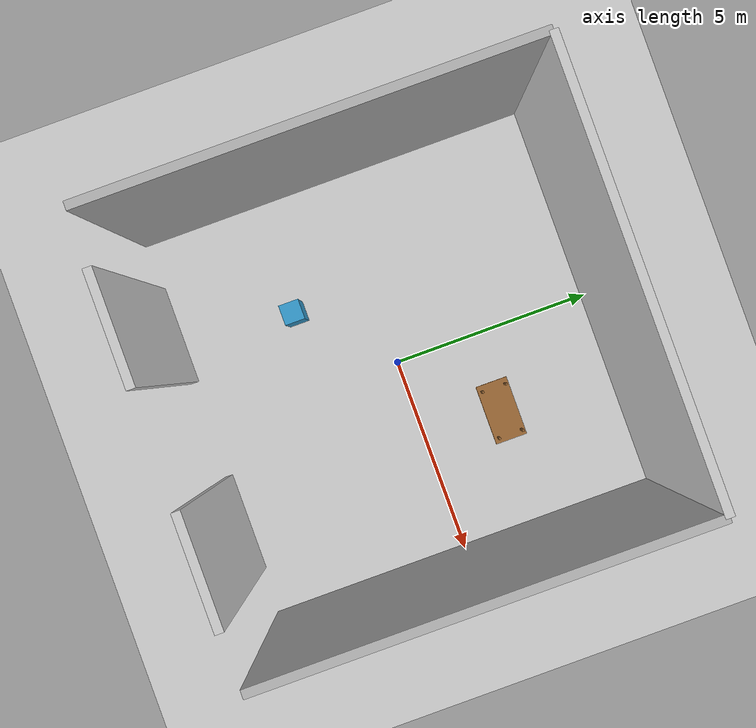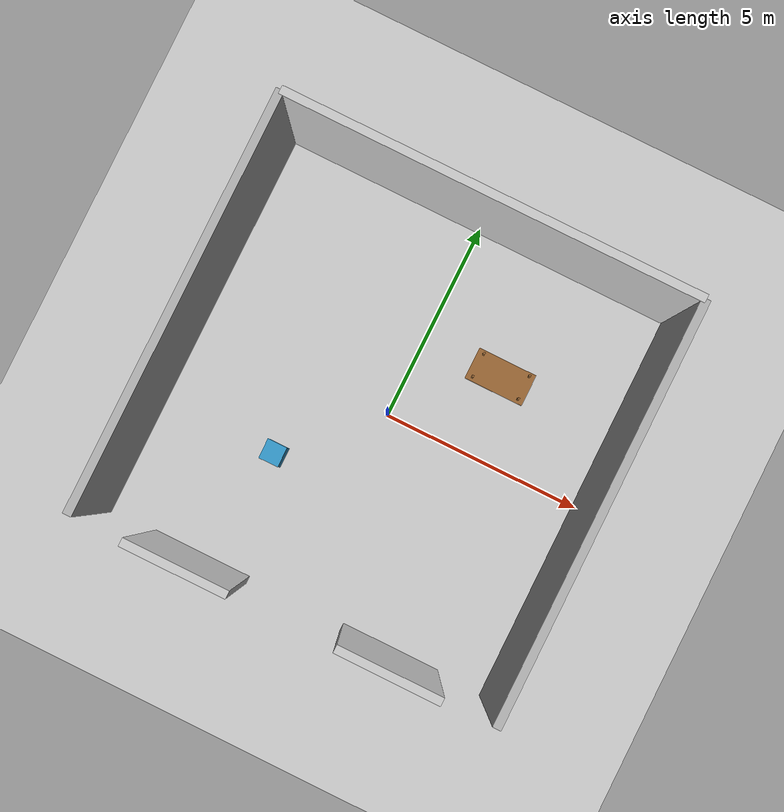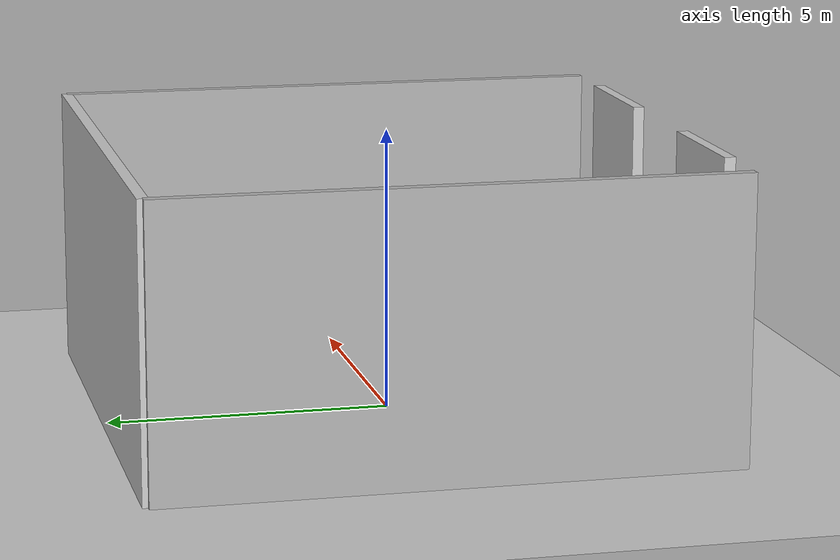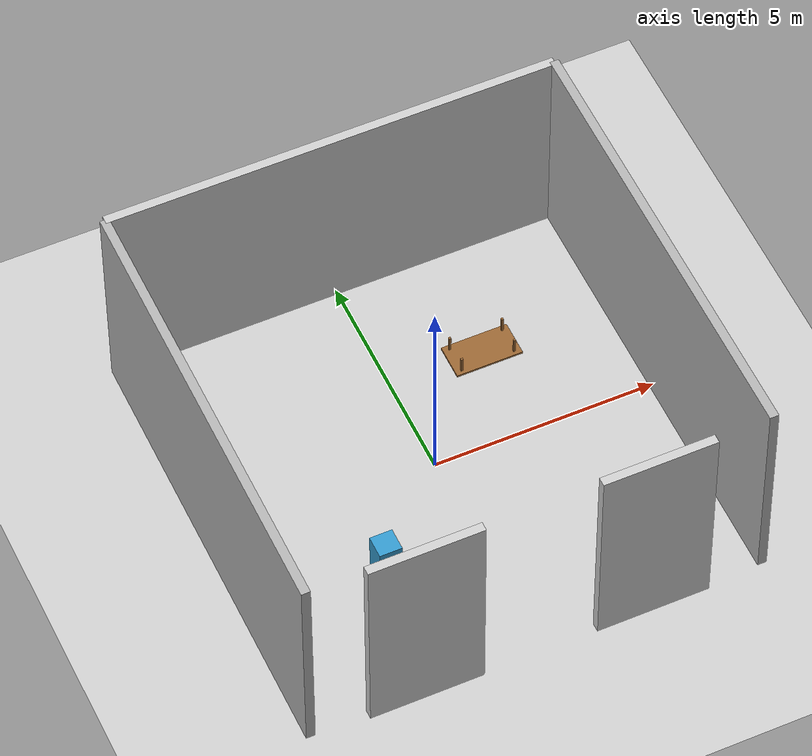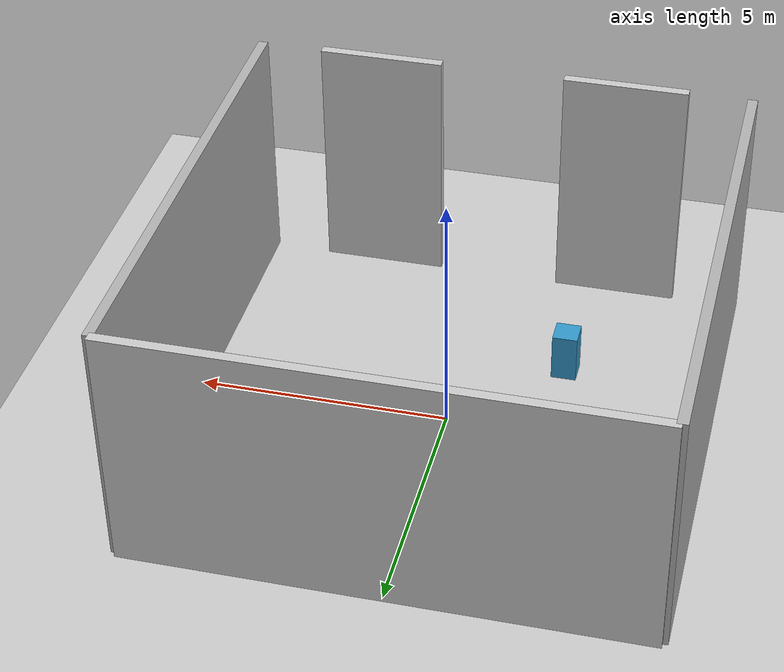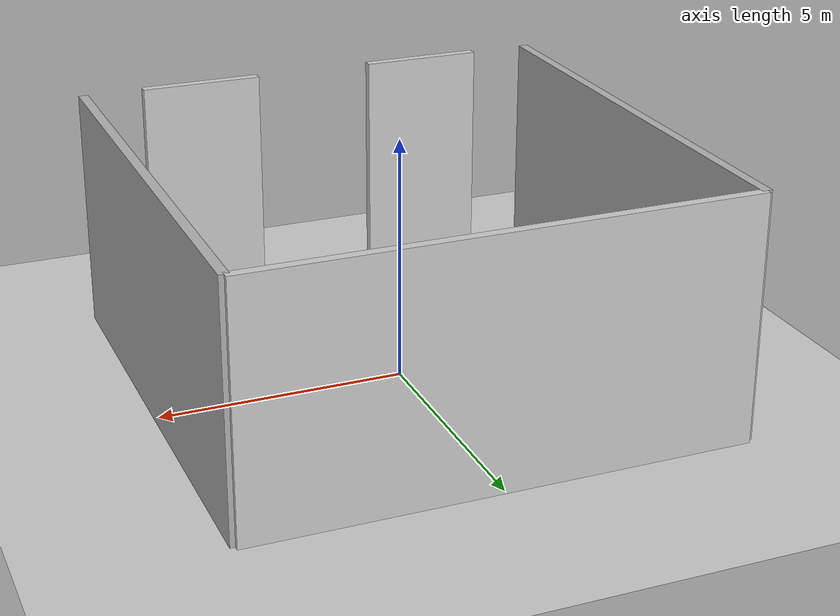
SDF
<?xml version="1.0" ?>
<sdf version="1.7">
  <world name="simple_indoor_world">
    <!-- Include standard models -->
    <include>
      <uri>model://ground_plane</uri>
    </include>

    <include>
      <uri>model://sun</uri>
    </include>

    <!-- Simple room with walls -->
    <model name="room_walls">
      <!-- Back wall -->
      <link name="back_wall">
        <pose>0 5 2.5 0 0 0</pose>
        <collision name="back_wall_collision">
          <geometry>
            <box>
              <size>10 0.2 5</size>
            </box>
          </geometry>
        </collision>
        <visual name="back_wall_visual">
          <geometry>
            <box>
              <size>10 0.2 5</size>
            </box>
          </geometry>
          <material>
            <ambient>0.8 0.8 0.8 1</ambient>
            <diffuse>0.8 0.8 0.8 1</diffuse>
            <specular>0.1 0.1 0.1 1</specular>
          </material>
        </visual>
      </link>

      <!-- Left wall -->
      <link name="left_wall">
        <pose>-5 0 2.5 0 0 1.5708</pose>
        <collision name="left_wall_collision">
          <geometry>
            <box>
              <size>10 0.2 5</size>
            </box>
          </geometry>
        </collision>
        <visual name="left_wall_visual">
          <geometry>
            <box>
              <size>10 0.2 5</size>
            </box>
          </geometry>
          <material>
            <ambient>0.7 0.7 0.7 1</ambient>
            <diffuse>0.7 0.7 0.7 1</diffuse>
            <specular>0.1 0.1 0.1 1</specular>
          </material>
        </visual>
      </link>

      <!-- Right wall -->
      <link name="right_wall">
        <pose>5 0 2.5 0 0 -1.5708</pose>
        <collision name="right_wall_collision">
          <geometry>
            <box>
              <size>10 0.2 5</size>
            </box>
          </geometry>
        </collision>
        <visual name="right_wall_visual">
          <geometry>
            <box>
              <size>10 0.2 5</size>
            </box>
          </geometry>
          <material>
            <ambient>0.7 0.7 0.7 1</ambient>
            <diffuse>0.7 0.7 0.7 1</diffuse>
            <specular>0.1 0.1 0.1 1</specular>
          </material>
        </visual>
      </link>

      <!-- Front wall (with opening for door) -->
      <link name="front_wall_left">
        <pose>-2.5 -5 2.5 0 0 3.14159</pose>
        <collision name="front_wall_left_collision">
          <geometry>
            <box>
              <size>2.5 0.2 5</size>
            </box>
          </geometry>
        </collision>
        <visual name="front_wall_left_visual">
          <geometry>
            <box>
              <size>2.5 0.2 5</size>
            </box>
          </geometry>
          <material>
            <ambient>0.8 0.8 0.8 1</ambient>
            <diffuse>0.8 0.8 0.8 1</diffuse>
            <specular>0.1 0.1 0.1 1</specular>
          </material>
        </visual>
      </link>

      <link name="front_wall_right">
        <pose>2.5 -5 2.5 0 0 3.14159</pose>
        <collision name="front_wall_right_collision">
          <geometry>
            <box>
              <size>2.5 0.2 5</size>
            </box>
          </geometry>
        </collision>
        <visual name="front_wall_right_visual">
          <geometry>
            <box>
              <size>2.5 0.2 5</size>
            </box>
          </geometry>
          <material>
            <ambient>0.8 0.8 0.8 1</ambient>
            <diffuse>0.8 0.8 0.8 1</diffuse>
            <specular>0.1 0.1 0.1 1</specular>
          </material>
        </visual>
      </link>
    </model>

    <!-- Simple furniture -->
    <model name="table">
      <pose>2 2 0.4 0 0 0</pose>
      <link name="table_top">
        <collision name="table_top_collision">
          <geometry>
            <box>
              <size>1.5 0.8 0.05</size>
            </box>
          </geometry>
        </collision>
        <visual name="table_top_visual">
          <geometry>
            <box>
              <size>1.5 0.8 0.05</size>
            </box>
          </geometry>
          <material>
            <ambient>0.6 0.4 0.2 1</ambient>
            <diffuse>0.6 0.4 0.2 1</diffuse>
            <specular>0.3 0.3 0.3 1</specular>
          </material>
        </visual>
      </link>

      <link name="table_leg1">
        <pose>0.6 0.3 0.2 0 0 0</pose>
        <collision name="table_leg1_collision">
          <geometry>
            <box>
              <size>0.05 0.05 0.4</size>
            </box>
          </geometry>
        </collision>
        <visual name="table_leg1_visual">
          <geometry>
            <box>
              <size>0.05 0.05 0.4</size>
            </box>
          </geometry>
          <material>
            <ambient>0.6 0.4 0.2 1</ambient>
            <diffuse>0.6 0.4 0.2 1</diffuse>
            <specular>0.3 0.3 0.3 1</specular>
          </material>
        </visual>
      </link>

      <link name="table_leg2">
        <pose>-0.6 0.3 0.2 0 0 0</pose>
        <collision name="table_leg2_collision">
          <geometry>
            <box>
              <size>0.05 0.05 0.4</size>
            </box>
          </geometry>
        </collision>
        <visual name="table_leg2_visual">
          <geometry>
            <box>
              <size>0.05 0.05 0.4</size>
            </box>
          </geometry>
          <material>
            <ambient>0.6 0.4 0.2 1</ambient>
            <diffuse>0.6 0.4 0.2 1</diffuse>
            <specular>0.3 0.3 0.3 1</specular>
          </material>
        </visual>
      </link>

      <link name="table_leg3">
        <pose>0.6 -0.3 0.2 0 0 0</pose>
        <collision name="table_leg3_collision">
          <geometry>
            <box>
              <size>0.05 0.05 0.4</size>
            </box>
          </geometry>
        </collision>
        <visual name="table_leg3_visual">
          <geometry>
            <box>
              <size>0.05 0.05 0.4</size>
            </box>
          </geometry>
          <material>
            <ambient>0.6 0.4 0.2 1</ambient>
            <diffuse>0.6 0.4 0.2 1</diffuse>
            <specular>0.3 0.3 0.3 1</specular>
          </material>
        </visual>
      </link>

      <link name="table_leg4">
        <pose>-0.6 -0.3 0.2 0 0 0</pose>
        <collision name="table_leg4_collision">
          <geometry>
            <box>
              <size>0.05 0.05 0.4</size>
            </box>
          </geometry>
        </collision>
        <visual name="table_leg4_visual">
          <geometry>
            <box>
              <size>0.05 0.05 0.4</size>
            </box>
          </geometry>
          <material>
            <ambient>0.6 0.4 0.2 1</ambient>
            <diffuse>0.6 0.4 0.2 1</diffuse>
            <specular>0.3 0.3 0.3 1</specular>
          </material>
        </visual>
      </link>
    </model>

    <!-- Simple obstacle -->
    <model name="obstacle_box">
      <pose>-2 -2 0.5 0 0 0</pose>
      <link name="box_link">
        <collision name="box_collision">
          <geometry>
            <box>
              <size>0.5 0.5 1.0</size>
            </box>
          </geometry>
        </collision>
        <visual name="box_visual">
          <geometry>
            <box>
              <size>0.5 0.5 1.0</size>
            </box>
          </geometry>
          <material>
            <ambient>0.2 0.6 0.8 1</ambient>
            <diffuse>0.2 0.6 0.8 1</diffuse>
            <specular>0.2 0.2 0.2 1</specular>
          </material>
        </visual>
      </link>
    </model>

    <!-- Lighting -->
    <light name="room_light_1" type="point">
      <pose>0 0 4 0 0 0</pose>
      <diffuse>0.8 0.8 0.8 1</diffuse>
      <specular>0.8 0.8 0.8 1</specular>
      <attenuation>
        <range>10</range>
        <constant>0.9</constant>
        <linear>0.01</linear>
        <quadratic>0.001</quadratic>
      </attenuation>
    </light>

  </world>
</sdf>
